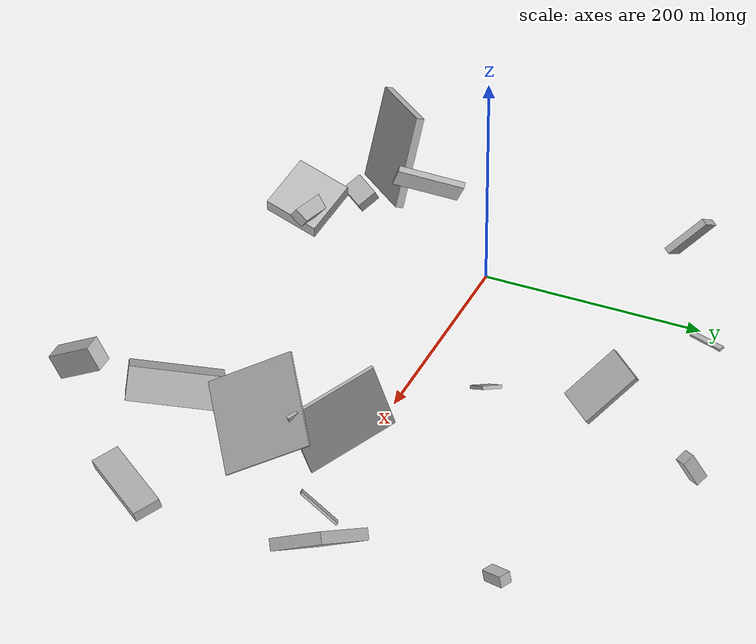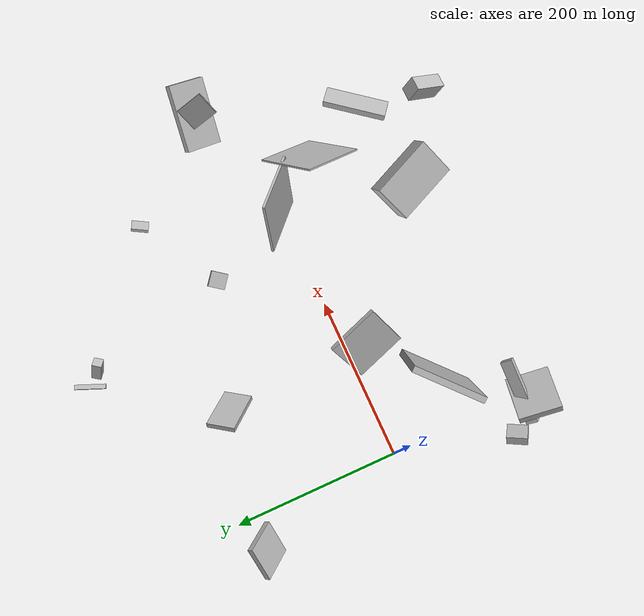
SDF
<sdf version="1.6">
 <world name="default">
  <scene>
   <sky><clouds><speed>12</speed></clouds></sky>
   <ambient>0.4 0.4 0.4 1</ambient>
   <background>0.7 0.7 0.7 1</background>
   <shadows>1</shadows>
  </scene>
  <gravity>0 0 -9.8066</gravity>
  <magnetic_field>6e-06 2.3e-05 -4.2e-05</magnetic_field>
  <physics default="0" name="default_physics" type="ode">
   <ode>
    <solver>
     <type>quick</type>
     <iters>10</iters>
     <sor>1.0</sor>
     <use_dynamic_moi_rescaling>0</use_dynamic_moi_rescaling>
    </solver>
    <constraints>
     <cfm>0</cfm>
     <erp>0.2</erp>
     <contact_max_correcting_vel>100</contact_max_correcting_vel>
     <contact_surface_layer>0.001</contact_surface_layer>
    </constraints>
   </ode>
   <max_step_size>0.004</max_step_size>
   <real_time_factor>1</real_time_factor>
   <real_time_update_rate>250</real_time_update_rate>
  </physics>
  <light name="sun" type="directional">
   <pose>0 0 10 0 0 0</pose>
   <diffuse>0.8 0.8 0.8 1</diffuse>
   <specular>0.2 0.2 0.2 1</specular>
   <attenuation>
    <range>1000</range>
    <constant>0.9</constant>
    <linear>0.01</linear>
    <quadratic>0.001</quadratic>
   </attenuation>
   <direction>-0.5 0.1 -0.9</direction>
  </light>
  <model name="building_1">
   <static>0</static>
   <pose>353.0355542006993 -50.46503152645497 82.94485113827452 0.7324735050695315 -0.5301584203172067 1.7978186971864647</pose>
   <link name="link">
    <gravity>0</gravity>
    <pose>0 0 1.0 0 0 0</pose>
    <collision name="collision"><geometry><box><size>80 80 2</size></box></geometry></collision>
    <visual name="visual">
     <cast_shadows>0</cast_shadows>
     <geometry><box><size>80 80 2</size></box></geometry>
     <material>
      <script>
       <uri>model://HANNAS_wall/materials/scripts</uri>
       <uri>model://HANNAS_wall/materials/textures</uri>
       <name>vrc/HANNAS_wall</name>
      </script>
     </material>
    </visual>
   </link>
  </model>
  <model name="building_2">
   <static>0</static>
   <pose>226.77057497998783 270.9341004457769 41.20964068431306 1.396390135720986 -0.4603183887731781 2.608307371536081</pose>
   <link name="link">
    <gravity>0</gravity>
    <pose>0 0 5.5 0 0 0</pose>
    <collision name="collision"><geometry><box><size>11 27 11</size></box></geometry></collision>
    <visual name="visual">
     <cast_shadows>0</cast_shadows>
     <geometry><box><size>11 27 11</size></box></geometry>
     <material>
      <script>
       <uri>model://HANNAS_wall/materials/scripts</uri>
       <uri>model://HANNAS_wall/materials/textures</uri>
       <name>vrc/HANNAS_wall</name>
      </script>
     </material>
    </visual>
   </link>
  </model>
  <model name="building_3">
   <static>0</static>
   <pose>109.25793064138358 172.76521681628404 31.40351778824219 -2.783309931168183 0.8506061181704072 2.802578604789088</pose>
   <link name="link">
    <gravity>0</gravity>
    <pose>0 0 28.0 0 0 0</pose>
    <collision name="collision"><geometry><box><size>6 35 56</size></box></geometry></collision>
    <visual name="visual">
     <cast_shadows>0</cast_shadows>
     <geometry><box><size>6 35 56</size></box></geometry>
     <material>
      <script>
       <uri>model://HANNAS_wall/materials/scripts</uri>
       <uri>model://HANNAS_wall/materials/textures</uri>
       <name>vrc/HANNAS_wall</name>
      </script>
     </material>
    </visual>
   </link>
  </model>
  <model name="building_4">
   <static>0</static>
   <pose>368.54958504309025 -186.2828128462775 113.03336197313565 3.1095513965970984 -1.0739499319188839 -1.5404757712212511</pose>
   <link name="link">
    <gravity>0</gravity>
    <pose>0 0 20.5 0 0 0</pose>
    <collision name="collision"><geometry><box><size>22 17 41</size></box></geometry></collision>
    <visual name="visual">
     <cast_shadows>0</cast_shadows>
     <geometry><box><size>22 17 41</size></box></geometry>
     <material>
      <script>
       <uri>model://HANNAS_wall/materials/scripts</uri>
       <uri>model://HANNAS_wall/materials/textures</uri>
       <name>vrc/HANNAS_wall</name>
      </script>
     </material>
    </visual>
   </link>
  </model>
  <model name="building_5">
   <static>0</static>
   <pose>262.92348380110315 100.6132654221399 92.83282969470012 2.055928670736938 -0.9808679491285505 -2.6668827653784057</pose>
   <link name="link">
    <gravity>0</gravity>
    <pose>0 0 9.0 0 0 0</pose>
    <collision name="collision"><geometry><box><size>3 20 18</size></box></geometry></collision>
    <visual name="visual">
     <cast_shadows>0</cast_shadows>
     <geometry><box><size>3 20 18</size></box></geometry>
     <material>
      <script>
       <uri>model://HANNAS_wall/materials/scripts</uri>
       <uri>model://HANNAS_wall/materials/textures</uri>
       <name>vrc/HANNAS_wall</name>
      </script>
     </material>
    </visual>
   </link>
  </model>
  <model name="building_6">
   <static>0</static>
   <pose>415.7688211487345 -141.6807789632649 31.638366288817267 3.1180574252627373 -0.2593018883915426 2.479823492465057</pose>
   <link name="link">
    <gravity>0</gravity>
    <pose>0 0 4.5 0 0 0</pose>
    <collision name="collision"><geometry><box><size>24 80 9</size></box></geometry></collision>
    <visual name="visual">
     <cast_shadows>0</cast_shadows>
     <geometry><box><size>24 80 9</size></box></geometry>
     <material>
      <script>
       <uri>model://HANNAS_wall/materials/scripts</uri>
       <uri>model://HANNAS_wall/materials/textures</uri>
       <name>vrc/HANNAS_wall</name>
      </script>
     </material>
    </visual>
   </link>
  </model>
  <model name="building_7">
   <static>0</static>
   <pose>102.94121640676092 18.582294055594662 160.74494258948263 1.2299670747328062 -0.7929889146443453 0.5588718231672734</pose>
   <link name="link">
    <gravity>0</gravity>
    <pose>0 0 28.0 0 0 0</pose>
    <collision name="collision"><geometry><box><size>52 5 56</size></box></geometry></collision>
    <visual name="visual">
     <cast_shadows>0</cast_shadows>
     <geometry><box><size>52 5 56</size></box></geometry>
     <material>
      <script>
       <uri>model://HANNAS_wall/materials/scripts</uri>
       <uri>model://HANNAS_wall/materials/textures</uri>
       <name>vrc/HANNAS_wall</name>
      </script>
     </material>
    </visual>
   </link>
  </model>
  <model name="building_8">
   <static>0</static>
   <pose>377.7924912651931 172.00485662818258 10.648535523688006 1.6567260422823418 1.3188066411457455 1.214089930678757</pose>
   <link name="link">
    <gravity>0</gravity>
    <pose>0 0 5.5 0 0 0</pose>
    <collision name="collision"><geometry><box><size>10 21 11</size></box></geometry></collision>
    <visual name="visual">
     <cast_shadows>0</cast_shadows>
     <geometry><box><size>10 21 11</size></box></geometry>
     <material>
      <script>
       <uri>model://HANNAS_wall/materials/scripts</uri>
       <uri>model://HANNAS_wall/materials/textures</uri>
       <name>vrc/HANNAS_wall</name>
      </script>
     </material>
    </visual>
   </link>
  </model>
  <model name="building_9">
   <static>0</static>
   <pose>276.22199400324087 -121.82628323204108 30.633047038895626 -1.2925296255610215 -1.0257666074828302 -2.9724029047531833</pose>
   <link name="link">
    <gravity>0</gravity>
    <pose>0 0 40.0 0 0 0</pose>
    <collision name="collision"><geometry><box><size>29 50 80</size></box></geometry></collision>
    <visual name="visual">
     <cast_shadows>0</cast_shadows>
     <geometry><box><size>29 50 80</size></box></geometry>
     <material>
      <script>
       <uri>model://HANNAS_wall/materials/scripts</uri>
       <uri>model://HANNAS_wall/materials/textures</uri>
       <name>vrc/HANNAS_wall</name>
      </script>
     </material>
    </visual>
   </link>
  </model>
  <model name="building_10">
   <static>0</static>
   <pose>-10.098836633285465 -199.9371981343291 36.289682480809006 -1.8135660400153772 0.3328390493743862 -0.22038698476712942</pose>
   <link name="link">
    <gravity>0</gravity>
    <pose>0 0 25.5 0 0 0</pose>
    <collision name="collision"><geometry><box><size>52 14 51</size></box></geometry></collision>
    <visual name="visual">
     <cast_shadows>0</cast_shadows>
     <geometry><box><size>52 14 51</size></box></geometry>
     <material>
      <script>
       <uri>model://HANNAS_wall/materials/scripts</uri>
       <uri>model://HANNAS_wall/materials/textures</uri>
       <name>vrc/HANNAS_wall</name>
      </script>
     </material>
    </visual>
   </link>
  </model>
  <model name="building_11">
   <static>0</static>
   <pose>-54.67453917577278 172.72155028391524 56.381093569769085 0.8274980996149885 0.5827739997097101 1.1837778200736342</pose>
   <link name="link">
    <gravity>0</gravity>
    <pose>0 0 22.0 0 0 0</pose>
    <collision name="collision"><geometry><box><size>6 41 44</size></box></geometry></collision>
    <visual name="visual">
     <cast_shadows>0</cast_shadows>
     <geometry><box><size>6 41 44</size></box></geometry>
     <material>
      <script>
       <uri>model://HANNAS_wall/materials/scripts</uri>
       <uri>model://HANNAS_wall/materials/textures</uri>
       <name>vrc/HANNAS_wall</name>
      </script>
     </material>
    </visual>
   </link>
  </model>
  <model name="building_12">
   <static>0</static>
   <pose>-34.6156901386996 -162.15826712795774 21.398704987418988 -1.099194091290144 0.8905168947657421 -1.1809203807533069</pose>
   <link name="link">
    <gravity>0</gravity>
    <pose>0 0 40.0 0 0 0</pose>
    <collision name="collision"><geometry><box><size>8 14 80</size></box></geometry></collision>
    <visual name="visual">
     <cast_shadows>0</cast_shadows>
     <geometry><box><size>8 14 80</size></box></geometry>
     <material>
      <script>
       <uri>model://HANNAS_wall/materials/scripts</uri>
       <uri>model://HANNAS_wall/materials/textures</uri>
       <name>vrc/HANNAS_wall</name>
      </script>
     </material>
    </visual>
   </link>
  </model>
  <model name="building_13">
   <static>0</static>
   <pose>430.51591517994973 58.323030856144186 49.336777281900716 -0.9514895390002938 0.3835358140333268 -1.4532571451189302</pose>
   <link name="link">
    <gravity>0</gravity>
    <pose>0 0 40.0 0 0 0</pose>
    <collision name="collision"><geometry><box><size>45 10 80</size></box></geometry></collision>
    <visual name="visual">
     <cast_shadows>0</cast_shadows>
     <geometry><box><size>45 10 80</size></box></geometry>
     <material>
      <script>
       <uri>model://HANNAS_wall/materials/scripts</uri>
       <uri>model://HANNAS_wall/materials/textures</uri>
       <name>vrc/HANNAS_wall</name>
      </script>
     </material>
    </visual>
   </link>
  </model>
  <model name="building_14">
   <static>0</static>
   <pose>191.27794416953202 269.3492752461724 141.89023340750538 -3.0901352615732876 0.12086377050450066 -0.3745667299417429</pose>
   <link name="link">
    <gravity>0</gravity>
    <pose>0 0 1.0 0 0 0</pose>
    <collision name="collision"><geometry><box><size>5 32 2</size></box></geometry></collision>
    <visual name="visual">
     <cast_shadows>0</cast_shadows>
     <geometry><box><size>5 32 2</size></box></geometry>
     <material>
      <script>
       <uri>model://HANNAS_wall/materials/scripts</uri>
       <uri>model://HANNAS_wall/materials/textures</uri>
       <name>vrc/HANNAS_wall</name>
      </script>
     </material>
    </visual>
   </link>
  </model>
  <model name="building_15">
   <static>0</static>
   <pose>65.2814088375118 -69.00144166887223 113.51071336417267 0.21703309716031227 -0.3063555515086042 -0.8745821348877166</pose>
   <link name="link">
    <gravity>0</gravity>
    <pose>0 0 40.0 0 0 0</pose>
    <collision name="collision"><geometry><box><size>7 80 80</size></box></geometry></collision>
    <visual name="visual">
     <cast_shadows>0</cast_shadows>
     <geometry><box><size>7 80 80</size></box></geometry>
     <material>
      <script>
       <uri>model://HANNAS_wall/materials/scripts</uri>
       <uri>model://HANNAS_wall/materials/textures</uri>
       <name>vrc/HANNAS_wall</name>
      </script>
     </material>
    </visual>
   </link>
  </model>
  <model name="building_16">
   <static>0</static>
   <pose>289.02844063263274 30.410060597461936 82.59494729869274 1.9146540772889997 0.1657222116875241 0.920998829667294</pose>
   <link name="link">
    <gravity>0</gravity>
    <pose>0 0 40.0 0 0 0</pose>
    <collision name="collision"><geometry><box><size>3 80 80</size></box></geometry></collision>
    <visual name="visual">
     <cast_shadows>0</cast_shadows>
     <geometry><box><size>3 80 80</size></box></geometry>
     <material>
      <script>
       <uri>model://HANNAS_wall/materials/scripts</uri>
       <uri>model://HANNAS_wall/materials/textures</uri>
       <name>vrc/HANNAS_wall</name>
      </script>
     </material>
    </visual>
   </link>
  </model>
  <model name="building_17">
   <static>0</static>
   <pose>453.68931398308655 33.90165113642537 104.46391851057373 2.352116888213065 -0.6640713282075316 2.563362811163423</pose>
   <link name="link">
    <gravity>0</gravity>
    <pose>0 0 18.5 0 0 0</pose>
    <collision name="collision"><geometry><box><size>2 29 37</size></box></geometry></collision>
    <visual name="visual">
     <cast_shadows>0</cast_shadows>
     <geometry><box><size>2 29 37</size></box></geometry>
     <material>
      <script>
       <uri>model://HANNAS_wall/materials/scripts</uri>
       <uri>model://HANNAS_wall/materials/textures</uri>
       <name>vrc/HANNAS_wall</name>
      </script>
     </material>
    </visual>
   </link>
  </model>
  <model name="building_18">
   <static>0</static>
   <pose>-43.333470069193226 -137.93989006404314 20.525542647550882 0.5288483107003531 0.290946447898258 1.0678568631502678</pose>
   <link name="link">
    <gravity>0</gravity>
    <pose>0 0 6.5 0 0 0</pose>
    <collision name="collision"><geometry><box><size>24 19 13</size></box></geometry></collision>
    <visual name="visual">
     <cast_shadows>0</cast_shadows>
     <geometry><box><size>24 19 13</size></box></geometry>
     <material>
      <script>
       <uri>model://HANNAS_wall/materials/scripts</uri>
       <uri>model://HANNAS_wall/materials/textures</uri>
       <name>vrc/HANNAS_wall</name>
      </script>
     </material>
    </visual>
   </link>
  </model>
 </world>
</sdf>
